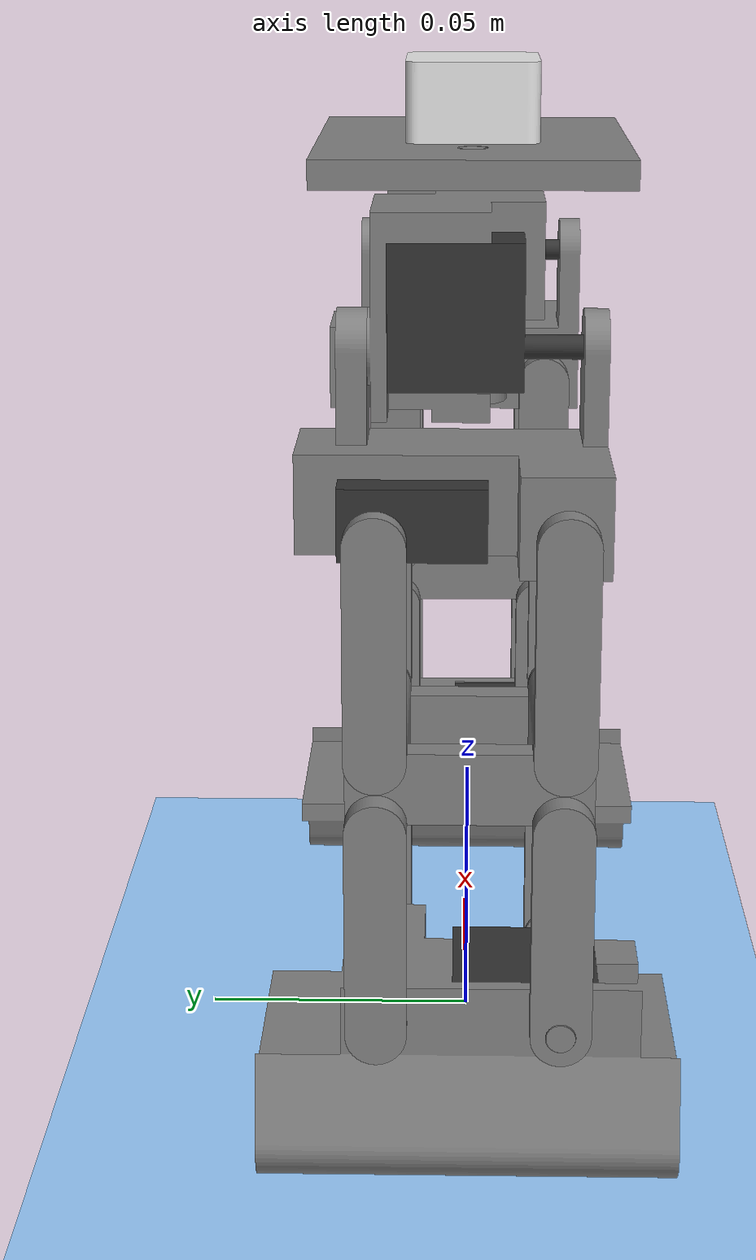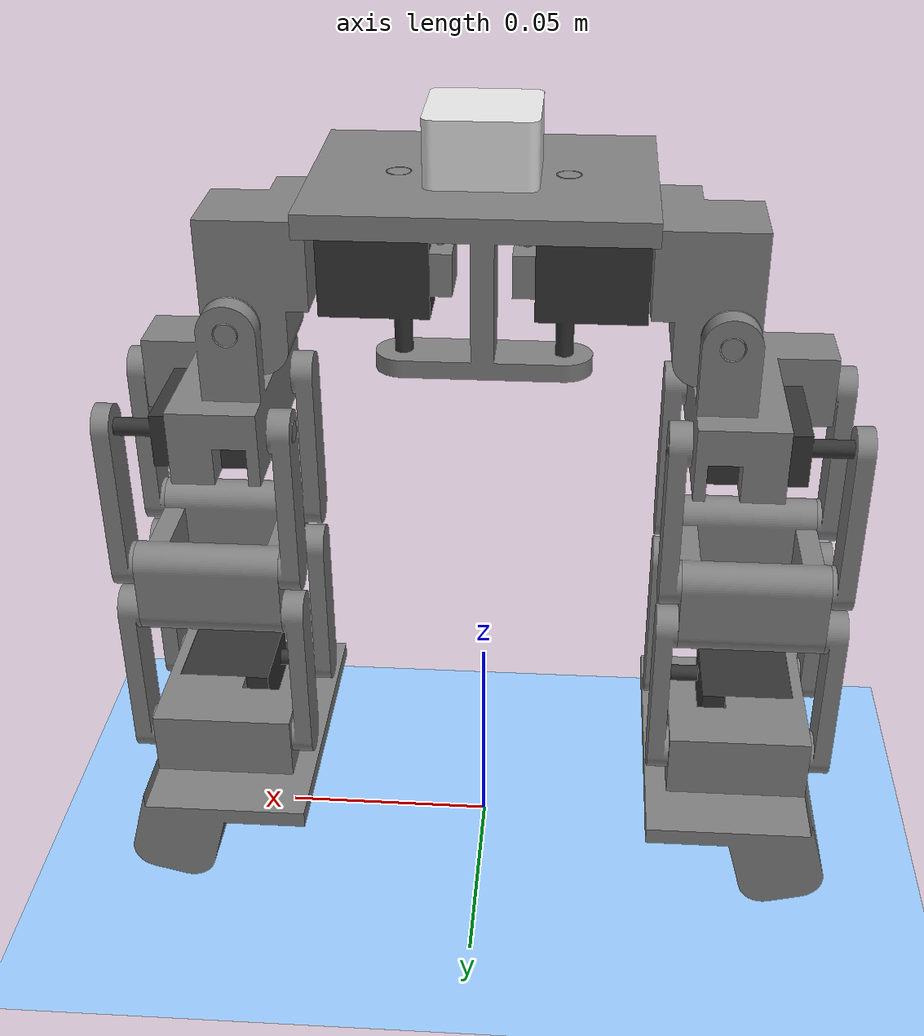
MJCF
<mujoco model="robo1">
  <compiler angle="radian" meshdir="assets" autolimits="true"/>

  <option timestep="0.001" gravity="0 0 -9.81" integrator="implicitfast"/>
  <asset>
    <mesh name="ATOM" file="ATOM.stl"/>
    <mesh name="base" file="base.stl"/>
    <mesh name="servo5" file="servo5.stl"/>
    <mesh name="servo7" file="servo7.stl"/>
    <mesh name="hipYawL" file="hipYawL.stl"/>
    <mesh name="hipYawR" file="hipYawR.stl"/>
    <mesh name="servo6" file="servo6.stl"/>
    <mesh name="servo8" file="servo8.stl"/>
    <mesh name="hipL" file="hipL.stl"/>
    <mesh name="hipR" file="hipR.stl"/>
    <mesh name="servo2" file="servo2.stl"/>
    <mesh name="servo4" file="servo4.stl"/>
    <mesh name="thighL1" file="thighL1.stl"/>
    <mesh name="thighL2" file="thighL2.stl"/>
    <mesh name="thighL3" file="thighL3.stl"/>
    <mesh name="thighL4" file="thighL4.stl"/>
    <mesh name="thighR1" file="thighR1.stl"/>
    <mesh name="thighR2" file="thighR2.stl"/>
    <mesh name="thighR3" file="thighR3.stl"/>
    <mesh name="thighR4" file="thighR4.stl"/>
    <mesh name="kneeL" file="kneeL.stl"/>
    <mesh name="kneeR" file="kneeR.stl"/>
    <mesh name="crusL1" file="crusL1.stl"/>
    <mesh name="crusL2" file="crusL2.stl"/>
    <mesh name="crusL3" file="crusL3.stl"/>
    <mesh name="crusL4" file="crusL4.stl"/>
    <mesh name="crusR1" file="crusR1.stl"/>
    <mesh name="crusR2" file="crusR2.stl"/>
    <mesh name="crusR3" file="crusR3.stl"/>
    <mesh name="crusR4" file="crusR4.stl"/>
    <mesh name="servo1" file="servo1.stl"/>
    <mesh name="servo3" file="servo3.stl"/>
    <mesh name="footL2" file="footL2.stl"/>
    <mesh name="footR2" file="footR2.stl"/>

  </asset>

  <default>
    <default class="xl330_servo">
      <joint type="hinge" damping="0.0530964357" armature="5.41683502e-06"/>
      <position ctrllimited="true" forcelimited="true" forcerange="-0.53936575 0.53936575"
                kp="3.18772165" kv="0.0358743199"/>
    </default>
  </default>

  <worldbody>
     <light name="light1" pos="1 0 3" dir="-1 0 -1" directional="true"/>

    <body name="ATOM" pos="0 0 0">
      <joint type="free"/>
      <inertial pos="0.000000006676 0 0.177554" mass="0.007" diaginertia="4.345430e-7 4.345430e-7 6.403938e-7"/>
      <geom type="mesh" mesh="ATOM" rgba="0.9 0.9 0.9 1"/>

      <body name="base" pos="0 0 0">
        <inertial pos="0 0.00000000003121 0.162547" mass="0.014" diaginertia="5.2092139e-6 7.3682875e-6 8.0434386e-6"/>
        <geom type="mesh" mesh="base" rgba="0.5 0.5 0.5 1"/>

        <body name="servo5" pos="0 0 0">
          <joint name="servo5_joint" class="xl330_servo" axis="0 0 1" pos="0.017500 -0.000000000233 0.130754"/>
          <inertial pos="0.022995 -0.000000000306 0.151059" mass="0.012" diaginertia="6.731345e-7 1.103958e-6 7.138884e-7"/>
          <geom type="mesh" mesh="servo5" rgba="0.2 0.2 0.2 1"/>

          <body name="hipYawL" pos="0 0 0">
            <inertial pos="0.036012 0.001539 0.153169" mass="0.0106" diaginertia="1.69677e-6 2.77844e-6 2.68924e-6"/>
            <geom type="mesh" mesh="hipYawL" rgba="0.5 0.5 0.5 1"/>

            <body name="servo6" pos="0 0 0">
              <inertial pos="0.051650 0.002405 0.148050" mass="0.012" diaginertia="1.103958e-6 7.138884e-7 6.731345e-7"/>
              <geom type="mesh" mesh="servo6" rgba="0.2 0.2 0.2 1"/>

              <body name="hipL" pos="0 0 0">
                <joint name="servo6_joint" class="xl330_servo" axis="0 -1 0" pos="0.051650 -0.017900 0.142555"/>
                <inertial pos="0.057629 -0.003183 0.122393" mass="0.017061" diaginertia="5.290446e-6 2.376636e-6 5.652026e-6"/>
                <geom type="mesh" mesh="hipL" rgba="0.5 0.5 0.5 1"/>

                <body name="thighL2" pos="0 0 0">
                  <joint type="hinge" pos="0.045400 0.015000 0.117304" axis="1 0 0"/>
                  <inertial pos="0.042594 0.015000 0.098835" mass="0.001879" diaginertia="3.13852e-7 3.01689e-7 1.849e-8"/>
                  <geom type="mesh" mesh="thighL2" rgba="0.5 0.5 0.5 1"/>
                  <site name="tL2_a" pos="0.045400 0.015000 0.082304"  size="0.002" rgba="1 0 0 1"/>
                </body>

                <body name="thighL3" pos="0 0 0">
                  <joint type="hinge" pos="0.078600 -0.015000 0.117304" axis="1 0 0"/>
                  <inertial pos="0.081390 -0.015000 0.099804" mass="0.001984" diaginertia="3.47812e-7 3.35713e-7 1.8879e-8"/>
                  <geom type="mesh" mesh="thighL3" rgba="0.5 0.5 0.5 1" contype="0" conaffinity="0"/>
                  <site name="tL3_a" pos="0.078600 -0.015000 0.082304"  size="0.002" rgba="1 0 0 1"/>
                </body>

                <body name="thighL4" pos="0 0 0">
                  <joint type="hinge" pos="0.045400 -0.015000 0.117304" axis="1 0 0"/>
                  <inertial pos="0.042610 -0.015000 0.099804" mass="0.001984" diaginertia="3.47811e-7 3.35713e-7 1.8878e-8"/>
                  <geom type="mesh" mesh="thighL4" rgba="0.5 0.5 0.5 1"/>
                  <site name="tL4_a" pos="0.045400 -0.015000 0.082304"  size="0.002" rgba="1 0 0 1"/>
                </body>

                <body name="servo2" pos="0 0 0">
                  <inertial pos="0.059295 0.009505 0.117304" mass="0.012" diaginertia="7.138884e-7 6.731345e-7 1.103958e-6"/>
                  <geom type="mesh" mesh="servo2" rgba="0.2 0.2 0.2 1"/>

                  <body name="thighL1" pos="0 0 0">
                    <joint name="servo2_joint" class="xl330_servo" axis="1 0 0" pos="0.079600 0.015000 0.117304"/>
                    <inertial pos="0.081490 0.015000 0.099038" mass="0.001900" diaginertia="3.20158e-7 3.08117e-7 1.7895e-8"/>
                    <geom type="mesh" mesh="thighL1" rgba="0.5 0.5 0.5 1"/>

                    <body name="kneeL" pos="0 0 0">
                      <joint type="hinge" pos="0.078600 0.015000 0.082304" axis="1 0 0"/>
                      <inertial pos="0.062000 0.000081 0.076304" mass="0.016518" diaginertia="3.840094e-6 2.300838e-6 5.128523e-6"/>
                      <geom type="mesh" mesh="kneeL" rgba="0.5 0.5 0.5 1"/>
                      <site name="tL2_b" pos="0.045400 0.015000 0.082304"  size="0.002" rgba="0 0 1 1"/>
                      <site name="tL3_b" pos="0.078600 -0.015000 0.082304"  size="0.002" rgba="0 0 1 1"/>
                      <site name="tL4_b" pos="0.045400 -0.015000 0.082304"  size="0.002" rgba="0 0 1 1"/>

                      <body name="crusL1" pos="0 0 0">
                        <joint type="hinge" pos="0.078600 0.015000 0.070304" axis="1 0 0"/>
                        <inertial pos="0.081514 0.015000 0.053884" mass="0.001868" diaginertia="3.09143e-7 2.97113e-7 1.77530e-8"/>
                        <geom type="mesh" mesh="crusL1" rgba="0.5 0.5 0.5 1" contype="0" conaffinity="0"/>
                        <site name="cL1_a" pos="0.078600 0.015000 0.035304" size="0.002" rgba="1 0 0 1"/>
                      </body>

                      <body name="crusL2" pos="0 0 0">
                        <joint type="hinge" pos="0.045400 0.015000 0.070304" axis="1 0 0"/>
                        <inertial pos="0.042610 0.015000 0.052804" mass="0.001984" diaginertia="3.47811e-7 3.35713e-7 1.88780e-8"/>
                        <geom type="mesh" mesh="crusL2" rgba="0.5 0.5 0.5 1" contype="0" conaffinity="0"/>
                        <site name="cL2_a" pos="0.045400 0.015000 0.035304" size="0.002" rgba="1 0 0 1"/>
                      </body>

                      <body name="crusL3" pos="0 0 0">
                        <joint type="hinge" pos="0.078600 -0.015000 0.070304" axis="1 0 0"/>
                        <inertial pos="0.081406 -0.015000 0.053773" mass="0.001879" diaginertia="3.13852e-7 3.01690e-7 1.84900e-8"/>
                        <geom type="mesh" mesh="crusL3" rgba="0.5 0.5 0.5 1" contype="0" conaffinity="0"/>
                        <site name="cL3_a" pos="0.078600 -0.015000 0.035304" size="0.002" rgba="1 0 0 1"/>
                      </body>

                      <body name="crusL4" pos="0 0 0">
                        <joint type="hinge" pos="0.045400 -0.015000 0.070304" axis="1 0 0"/>
                        <inertial pos="0.042610 -0.015000 0.052804" mass="0.001984" diaginertia="3.47811e-7 3.35713e-7 1.88780e-8"/>
                        <geom type="mesh" mesh="crusL4" rgba="0.5 0.5 0.5 1"/>

                        <body name="servo1" pos="0 0 0">
                          <joint name="servo1_joint" class="xl330_servo" axis="1 0 0" pos="0.045400 -0.015000 0.035304"/>
                          <inertial pos="0.064705 -0.009505 0.035304" mass="0.012000" diaginertia="7.13888e-7 6.73135e-7 1.10396e-6"/>
                          <geom type="mesh" mesh="servo1" rgba="0.2 0.2 0.2 1"/>

                          <body name="footL2" pos="0 0 0">
                            <inertial pos="0.067224 0.000936 0.021858" mass="0.0314" diaginertia="1.37736e-5 5.38515e-6 1.42576e-5"/>
                            <geom type="mesh" mesh="footL2" rgba="0.5 0.5 0.5 1"/>
                            <site name="cL1_b" pos="0.078600 0.015000 0.035304"  size="0.002" rgba="0 0 1 1"/>
                            <site name="cL2_b" pos="0.045400 0.015000 0.035304"  size="0.002" rgba="0 0 1 1"/>
                            <site name="cL3_b" pos="0.078600 -0.015000 0.035304"  size="0.002" rgba="0 0 1 1"/>
                          </body>

                        </body>

                      </body>

                    </body>

                  </body>

                </body>

              </body>
            </body>
          </body>
        </body>

        <body name="servo7" pos="0 0 0">
          <joint name="servo7_joint" class="xl330_servo" axis="0 0 1" pos="-0.017500 -0.000000000233 0.130754"/>
          <inertial pos="-0.022995 -0.000000000306 0.151059" mass="0.012" diaginertia="6.731345e-7 1.103958e-6 7.138884e-7"/>
          <geom type="mesh" mesh="servo7" rgba="0.2 0.2 0.2 1"/>

          <body name="hipYawR" pos="0 0 0">
            <inertial pos="-0.036012 0.001539 0.153169" mass="0.0106" diaginertia="1.69677e-6 2.77844e-6 2.68924e-6"/>
            <geom type="mesh" mesh="hipYawR" rgba="0.5 0.5 0.5 1"/>

            <body name="servo8" pos="0 0 0">
              <inertial pos="-0.05165 0.002405 0.14805" mass="0.012" diaginertia="1.103958e-6 7.138884e-7 6.731345e-7"/>
              <geom type="mesh" mesh="servo8" rgba="0.2 0.2 0.2 1"/>

              <body name="hipR" pos="0 0 0">
                <joint name="servo8_joint" class="xl330_servo" axis="0 -1 0" pos="-0.05165 -0.01790 0.142555"/>
                <inertial pos="-0.057629 -0.003183 0.122393" mass="0.017061" diaginertia="5.290446e-6 2.376636e-6 5.652026e-6"/>
                <geom type="mesh" mesh="hipR" rgba="0.5 0.5 0.5 1"/>

                <body name="thighR2" pos="0 0 0">
                  <joint type="hinge" pos="-0.045400 0.015000 0.117304" axis="1 0 0"/>
                  <inertial pos="-0.042594 0.015000 0.098835" mass="0.001879" diaginertia="3.13852e-7 3.01690e-7 1.84900e-8"/>
                  <geom type="mesh" mesh="thighR2" rgba="0.5 0.5 0.5 1"/>
                  <site name="tR2_a" pos="-0.045400 0.015000 0.082304"  size="0.002" rgba="1 0 0 1"/>
                </body>

                <body name="thighR3" pos="0 0 0">
                  <joint type="hinge" pos="-0.078600 -0.015000 0.117304" axis="1 0 0"/>
                  <inertial pos="-0.081390 -0.015000 0.099804" mass="0.001984" diaginertia="3.47811e-7 3.35713e-7 1.88780e-8"/>
                  <geom type="mesh" mesh="thighR3" rgba="0.5 0.5 0.5 1" contype="0" conaffinity="0"/>
                  <site name="tR3_a" pos="-0.078600 -0.015000 0.082304"  size="0.002" rgba="1 0 0 1"/>
                </body>

                <body name="thighR4" pos="0 0 0">
                  <joint type="hinge" pos="-0.045400 -0.015000 0.117304" axis="1 0 0"/>
                  <inertial pos="-0.042610 -0.015000 0.099804" mass="0.001984" diaginertia="3.47812e-7 3.35713e-7 1.88780e-8"/>
                  <geom type="mesh" mesh="thighR4" rgba="0.5 0.5 0.5 1"/>
                  <site name="tR4_a" pos="-0.045400 -0.015000 0.082304"  size="0.002" rgba="1 0 0 1"/>
                </body>

                <body name="servo4" pos="0 0 0">
                  <inertial pos="-0.059295 0.009505 0.117304" mass="0.012" diaginertia="7.138884e-7 6.731345e-7 1.103958e-6"/>
                  <geom type="mesh" mesh="servo4" rgba="0.2 0.2 0.2 1"/>

                  <body name="thighR1" pos="0 0 0">
                    <joint name="servo4_joint" class="xl330_servo" axis="-1 0 0" pos="-0.079600 0.015000 0.117304"/>
                    <inertial pos="-0.081490 0.015000 0.099038" mass="0.001900" diaginertia="3.20158e-7 3.08117e-7 1.78950e-8"/>
                    <geom type="mesh" mesh="thighR1" rgba="0.5 0.5 0.5 1"/>

                    <body name="kneeR" pos="0 0 0">
                      <joint type="hinge" pos="-0.078600 0.015000 0.082304" axis="-1 0 0"/>
                      <inertial pos="-0.062000 0.00009731 0.076304" mass="0.016518" diaginertia="3.840094e-6 2.300838e-6 5.128523e-6"/>
                      <geom type="mesh" mesh="kneeR" rgba="0.5 0.5 0.5 1"/>
                      <site name="tR2_b" pos="-0.045400 0.015000 0.082304"  size="0.002" rgba="0 0 1 1"/>
                      <site name="tR3_b" pos="-0.078600 -0.015000 0.082304"  size="0.002" rgba="0 0 1 1"/>
                      <site name="tR4_b" pos="-0.045400 -0.015000 0.082304"  size="0.002" rgba="0 0 1 1"/>

                      <body name="crusR1" pos="0 0 0">
                        <joint type="hinge" pos="-0.078600 0.015000 0.070304" axis="1 0 0"/>
                        <inertial pos="-0.081514 0.015000 0.053884" mass="0.001868" diaginertia="3.09143e-7 2.97113e-7 1.77530e-8"/>
                        <geom type="mesh" mesh="crusR1" rgba="0.5 0.5 0.5 1" contype="0" conaffinity="0"/>
                        <site name="cR1_a" pos="-0.078600 0.015000 0.035304" size="0.002" rgba="1 0 0 1"/>
                      </body>

                      <body name="crusR2" pos="0 0 0">
                        <joint type="hinge" pos="-0.045400 0.015000 0.070304" axis="1 0 0"/>
                        <inertial pos="-0.042610 0.015000 0.052804" mass="0.001984" diaginertia="3.47812e-7 3.35713e-7 1.88780e-8"/>
                        <geom type="mesh" mesh="crusR2" rgba="0.5 0.5 0.5 1" contype="0" conaffinity="0"/>
                        <site name="cR2_a" pos="-0.045400 0.015000 0.035304" size="0.002" rgba="1 0 0 1"/>
                      </body>

                      <body name="crusR3" pos="0 0 0">
                        <joint type="hinge" pos="-0.078600 -0.015000 0.070304" axis="1 0 0"/>
                        <inertial pos="-0.081406 -0.015000 0.053773" mass="0.001879" diaginertia="3.13852e-7 3.01689e-7 1.84900e-8"/>
                        <geom type="mesh" mesh="crusR3" rgba="0.5 0.5 0.5 1" contype="0" conaffinity="0"/>
                        <site name="cR3_a" pos="-0.078600 -0.015000 0.035304" size="0.002" rgba="1 0 0 1"/>
                      </body>

                      <body name="crusR4" pos="0 0 0">
                        <joint type="hinge" pos="-0.045400 -0.015000 0.070304" axis="1 0 0"/>
                        <inertial pos="-0.042610 -0.015000 0.052804" mass="0.001984" diaginertia="3.47812e-7 3.35713e-7 1.88780e-8"/>
                        <geom type="mesh" mesh="crusR4" rgba="0.5 0.5 0.5 1"/>

                        <body name="servo3" pos="0 0 0">
                          <joint name="servo3_joint" class="xl330_servo" axis="-1 0 0" pos="-0.045400 -0.015000 0.035304"/>
                          <inertial pos="-0.064705 -0.009505 0.035304" mass="0.012" diaginertia="7.138884e-7 6.731345e-7 1.103958e-6"/>
                          <geom type="mesh" mesh="servo3" rgba="0.2 0.2 0.2 1"/>

                          <body name="footR2" pos="0 0 0">
                            <inertial pos="-0.067224 0.000936 0.021858" mass="0.0314" diaginertia="1.37736e-5 5.38515e-6 1.42576e-5"/>
                            <geom type="mesh" mesh="footR2" rgba="0.5 0.5 0.5 1"/>
                            <site name="cR1_b" pos="-0.078600 0.015000 0.035304"   size="0.002" rgba="0 0 1 1"/>
                            <site name="cR2_b" pos="-0.045400 0.015000 0.035304"  size="0.002" rgba="0 0 1 1"/>
                            <site name="cR3_b" pos="-0.078600 -0.015000 0.035304"  size="0.002" rgba="0 0 1 1"/>
                          </body>

                        </body>

                      </body>

                    </body>

                  </body>

                </body>

              </body>
            </body>
          </body>
        </body>

      </body>

    </body>

    <geom type="plane" size="5 5 0.1" pos="0 0 0" rgba="0.6 0.8 1.0 1"/>
  </worldbody>

  <equality>
    <connect site1="tL2_a" site2="tL2_b" solref="0.001 1" solimp="1 1 0.0001"/>
    <connect site1="tL3_a" site2="tL3_b" solref="0.001 1" solimp="1 1 0.0001"/>
    <connect site1="tL4_a" site2="tL4_b" solref="0.001 1" solimp="1 1 0.0001"/>

    <connect site1="cL1_a" site2="cL1_b" solref="0.001 1" solimp="1 1 0.0001"/>
    <connect site1="cL2_a" site2="cL2_b" solref="0.001 1" solimp="1 1 0.0001"/>
    <connect site1="cL3_a" site2="cL3_b" solref="0.001 1" solimp="1 1 0.0001"/>

    <connect site1="tR2_a" site2="tR2_b" solref="0.001 1" solimp="1 1 0.0001"/>
    <connect site1="tR3_a" site2="tR3_b" solref="0.001 1" solimp="1 1 0.0001"/>
    <connect site1="tR4_a" site2="tR4_b" solref="0.001 1" solimp="1 1 0.0001"/>

    <connect site1="cR1_a" site2="cR1_b" solref="0.001 1" solimp="1 1 0.0001"/>
    <connect site1="cR2_a" site2="cR2_b" solref="0.001 1" solimp="1 1 0.0001"/>
    <connect site1="cR3_a" site2="cR3_b" solref="0.001 1" solimp="1 1 0.0001"/>
  </equality>

  <actuator>
    <position name="servo5_pos" class="xl330_servo" joint="servo5_joint" ctrlrange="-1.05 1.05"/>
    <position name="servo7_pos" class="xl330_servo" joint="servo7_joint" ctrlrange="-1.05 1.05"/>
    <position name="servo6_pos" class="xl330_servo" joint="servo6_joint" ctrlrange="-0.55 1.57079632679"/>
    <position name="servo2_pos" class="xl330_servo" joint="servo2_joint" ctrlrange="-1.186823891 1.186823891"/>
    <position name="servo1_pos" class="xl330_servo" joint="servo1_joint" ctrlrange="-1.186823891 1.186823891"/>
    <position name="servo8_pos" class="xl330_servo" joint="servo8_joint" ctrlrange="-1.57079632679 0.55"/>
    <position name="servo4_pos" class="xl330_servo" joint="servo4_joint" ctrlrange="-1.186823891 1.186823891"/>
    <position name="servo3_pos" class="xl330_servo" joint="servo3_joint" ctrlrange="-1.186823891 1.186823891"/>
  </actuator>
</mujoco>
